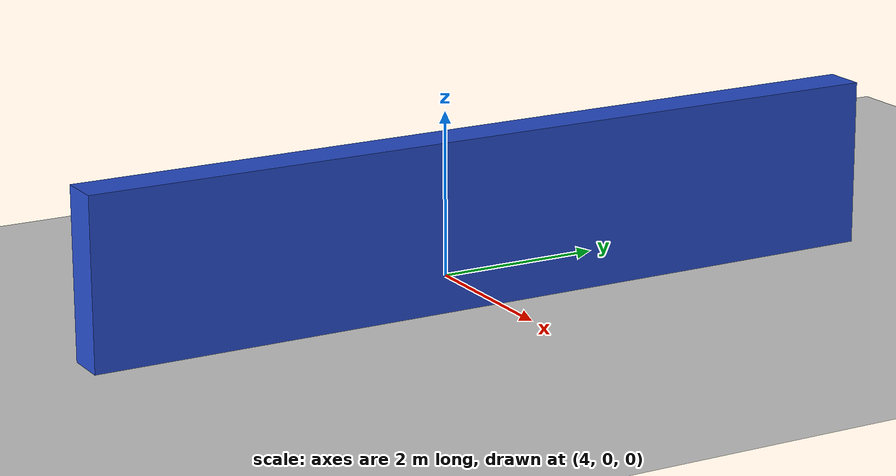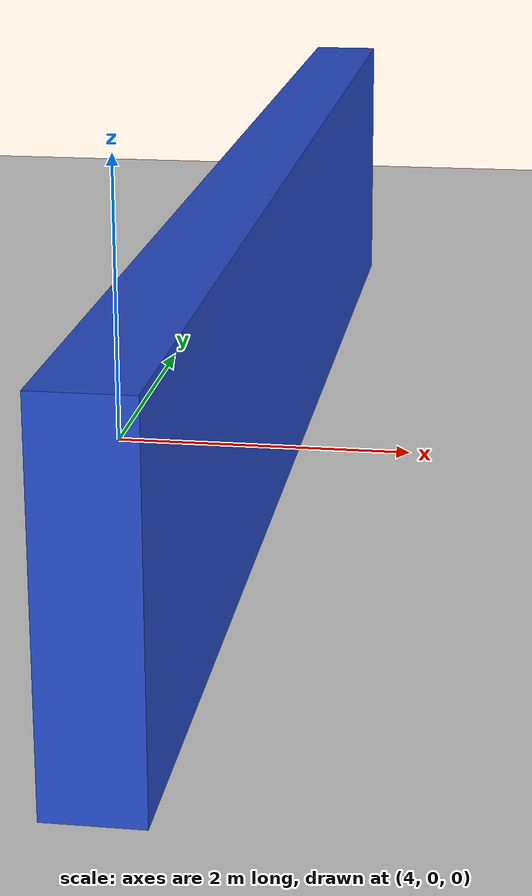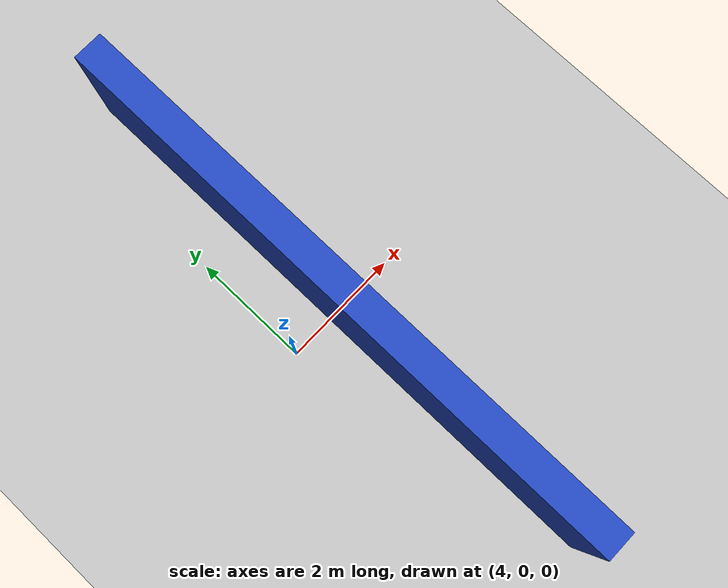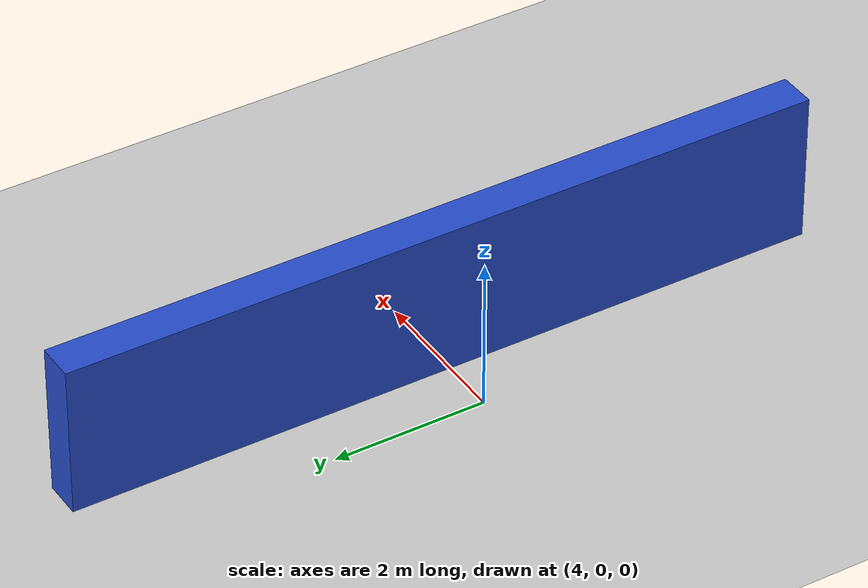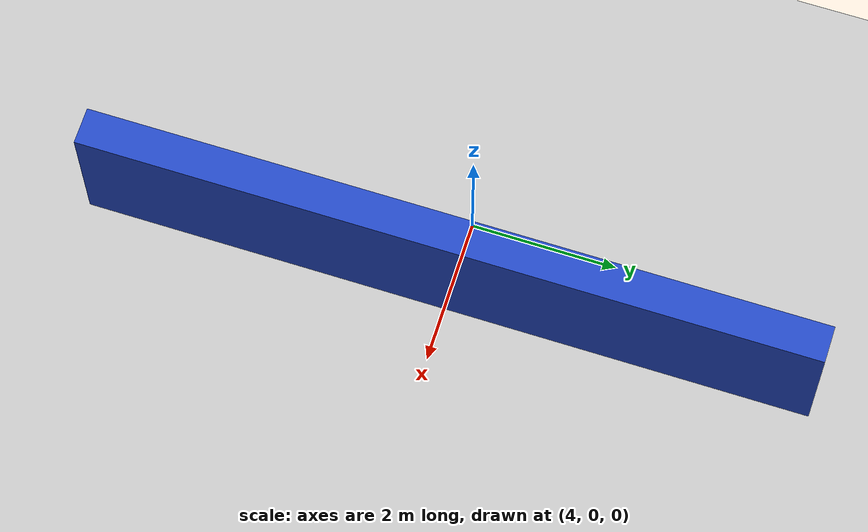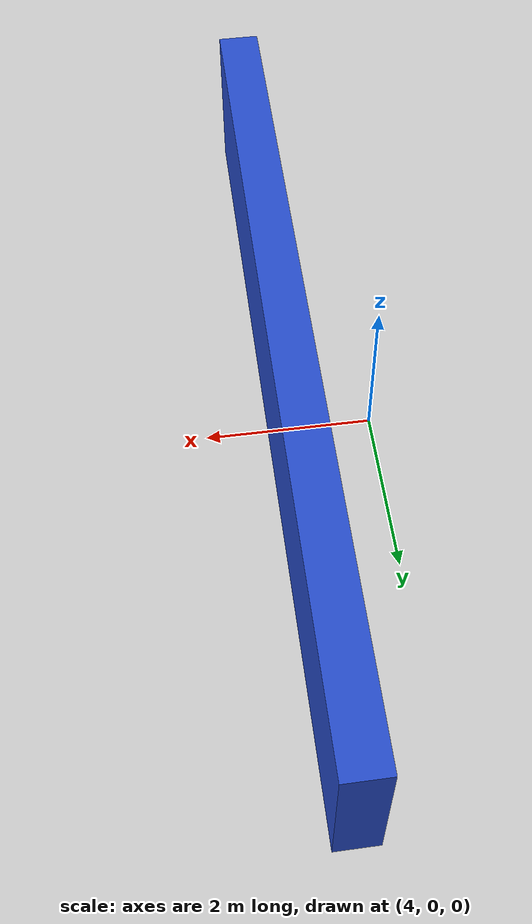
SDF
<sdf version="1.6">
  <world name="empty">
    <physics name="1ms" type="ignored">
      <max_step_size>0.001</max_step_size>
      <real_time_factor>1.0</real_time_factor>
    </physics>
    <plugin
      filename="gz-sim-physics-system"
      name="gz::sim::systems::Physics">
    </plugin>
    <plugin
      filename="gz-sim-user-commands-system"
      name="gz::sim::systems::UserCommands">
    </plugin>
    <plugin
      filename="gz-sim-scene-broadcaster-system"
      name="gz::sim::systems::SceneBroadcaster">
    </plugin>
    <plugin
      filename="gz-sim-sensors-system"
      name="gz::sim::systems::Sensors">
      <render_engine>ogre2</render_engine>
    </plugin>
    <plugin
      filename="gz-sim-contact-system"
      name="gz::sim::systems::Contact">
    </plugin>
    <plugin filename="gz-sim-imu-system"
      name="gz::sim::systems::Imu">
    </plugin>

    <light type="directional" name="sun">
      <cast_shadows>true</cast_shadows>
      <pose>0 0 10 0 0 0</pose>
      <diffuse>0.8 0.8 0.8 1</diffuse>
      <specular>0.2 0.2 0.2 1</specular>
      <attenuation>
        <range>1000</range>
        <constant>0.9</constant>
        <linear>0.01</linear>
        <quadratic>0.001</quadratic>
      </attenuation>
      <direction>-0.5 0.1 -0.9</direction>
    </light>
    <plugin filename="gz-sim-triggered-publisher-system"
            name="gz::sim::systems::TriggeredPublisher">
        <input type="gz.msgs.Int32" topic="/keyboard/keypress">
            <match field="data">16777235</match>
        </input>
        <output type="gz.msgs.Twist" topic="/cmd_vel">
            linear: {x: -0.5}, angular: {z: 0.0}
        </output>
    </plugin>
    <plugin filename="gz-sim-triggered-publisher-system"
            name="gz::sim::systems::TriggeredPublisher">
        <input type="gz.msgs.Int32" topic="/keyboard/keypress">
            <match field="data">16777237</match>
        </input>
        <output type="gz.msgs.Twist" topic="/cmd_vel">
            linear: {x: 0.5}, angular: {z: 0.0}
        </output>
    </plugin>

    <plugin filename="gz-sim-triggered-publisher-system"
            name="gz::sim::systems::TriggeredPublisher">
        <input type="gz.msgs.Int32" topic="/keyboard/keypress">
            <match field="data">16777234</match>
        </input>
        <output type="gz.msgs.Twist" topic="/cmd_vel">
            linear: {x: 0.0}, angular: {z: 0.5}
        </output>
    </plugin>

    <plugin filename="gz-sim-triggered-publisher-system"
            name="gz::sim::systems::TriggeredPublisher">
        <input type="gz.msgs.Int32" topic="/keyboard/keypress">
            <match field="data">16777236</match>
        </input>
        <output type="gz.msgs.Twist" topic="/cmd_vel">
            linear: {x: 0.0}, angular: {z: -0.5}
        </output>
    </plugin>

    <model name="ground_plane">
      <static>true</static>
      <link name="link">
        <collision name="collision">
          <geometry>
            <plane>
              <normal>0 0 1</normal>
              <size>100 100</size>
            </plane>
          </geometry>
        </collision>
        <visual name="visual">
          <geometry>
            <plane>
              <normal>0 0 1</normal>
              <size>100 100</size>
            </plane>
          </geometry>
          <material>
            <ambient>0.8 0.8 0.8 1</ambient>
            <diffuse>0.8 0.8 0.8 1</diffuse>
            <specular>0.8 0.8 0.8 1</specular>
          </material>
        </visual>
      </link>
    </model>
    <model name="wall">
      <static>true</static>
      <link name="box">
        <pose>5 0 1 0 0 0</pose> <visual name="visual">
          <geometry>
            <box>
              <size>0.5 10.0 2.0</size>
            </box>
          </geometry>
          <material>
            <script>
              <uri>file://media/materials/scripts/gazebo.material</uri>
              <name>Gazebo/Blue</name>
            </script>
          </material>
        </visual>
        <collision name="collision">
          <geometry>
            <box>
              <size>0.5 10.0 2.0</size>
            </box>
          </geometry>
        </collision>
        <sensor name='sensor_contact' type='contact'>
            <topic>/wall_contact</topic>
            <contact>
                <collision>collision</collision> </contact>
            <update_rate>10</update_rate>
        </sensor>

        </link>
    </model>

  </world>
</sdf>
